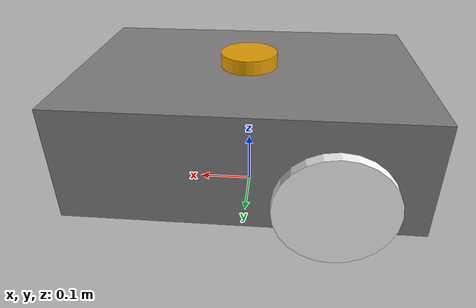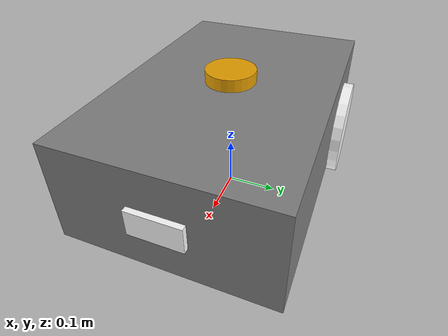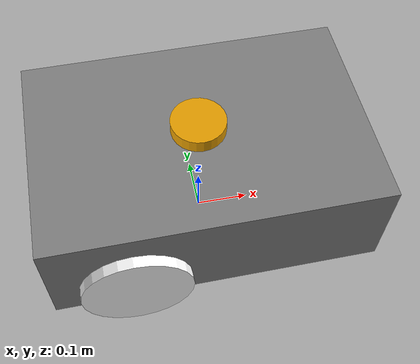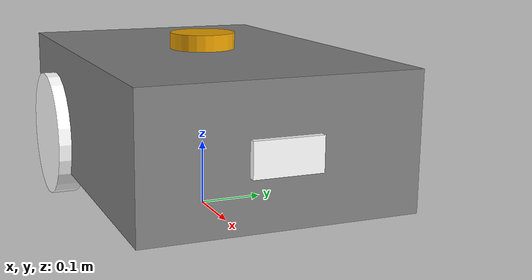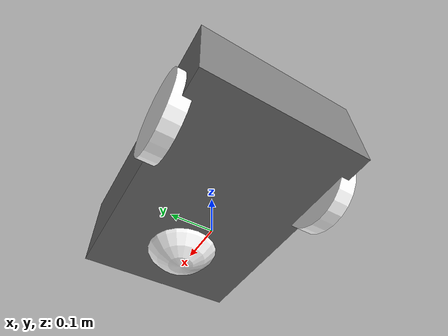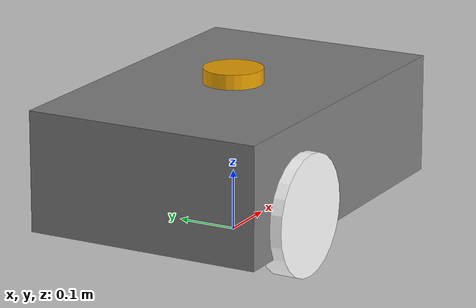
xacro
<?xml version="1.0"?>

<robot name="kordon" xmlns:xacro="http://www.ros.org/wiki/xacro">
    <!-- Args -->
    <xacro:arg name="robot_name" default="kordon001" />
    <xacro:arg name="prefix" default="001" />
    <xacro:arg name="namespace" default="" />
    <xacro:arg name="odom_topic" default="/ground_truth/odom" />
    <xacro:arg name="scan_topic" default="/scan" />
    <xacro:arg name="camera_topic" default="/camera/image_raw" />

    <!-- Includes -->
    <xacro:include filename="properties.xacro" />

    <xacro:arg name="use_gz" default="false" />
    <xacro:arg name="controllers_file" default="" />
    <xacro:include filename="ros2_control.xacro" />
    <xacro:kordon_ros2_control use_gz="$(arg use_gz)" />

    <xacro:include filename="gz.xacro" />
    <xacro:kordon_gz
        use_gz="$(arg use_gz)"
        controllers_file="$(arg controllers_file)"
        namespace="$(arg namespace)" />

    <!-- Lidar -->
    <xacro:include filename="lidar.xacro" />

    <!-- GPS -->
    <xacro:include filename="gps.xacro" />

    <!-- Camera -->
    <xacro:include filename="camera.xacro" />

    <!-- Base -->
    <link name="$(arg prefix)base_footprint" />

    <joint name="$(arg prefix)base_joint" type="fixed">
        <parent link="$(arg prefix)base_footprint" />
        <child link="$(arg prefix)base_link" />
        <origin xyz="0 0 0.15" rpy="0 0 0" />
    </joint>

    <link name="$(arg prefix)base_link">
        <xacro:inertial_box mass="${base_mass}" x="${base_length}" y="${base_width}"
            z="${base_height}">
            <origin xyz="0 0 0" rpy="0 0 0" />
        </xacro:inertial_box>
        <visual>
            <geometry>
                <box size="${base_length} ${base_width} ${base_height}" />
            </geometry>
            <origin xyz="0 0 0" rpy="0 0 0" />
            <material name="grey" />
        </visual>
        <collision>
            <geometry>
                <box size="${base_length} ${base_width} ${base_height}" />
            </geometry>
            <origin xyz="0 0 0" rpy="0 0 0" />
        </collision>
    </link>

    <!--    Left wheel -->
    <link name="$(arg prefix)left_wheel_link">
        <xacro:inertial_cylinder mass="${drive_wheel_mass}" radius="${wheel_radius}"
            length="${wheel_length}">
            <origin xyz="0 0 0" rpy="0 0 0" />
        </xacro:inertial_cylinder>
        <visual>
            <geometry>
                <cylinder radius="${wheel_radius}" length="${wheel_length}" />
            </geometry>
            <origin xyz="0 0 0" rpy="1.57 0 0" />
            <material name="black" />
        </visual>
        <collision>
            <geometry>
                <cylinder radius="${wheel_radius}" length="${wheel_length}" />
            </geometry>
            <origin xyz="0 0 0" rpy="1.57 0 0" />
        </collision>
    </link>

    <joint name="$(arg prefix)left_wheel_joint" type="continuous">
        <parent link="$(arg prefix)base_link" />
        <child link="$(arg prefix)left_wheel_link" />
        <origin xyz="-${base_length / 2 / 2} ${base_width / 2} -0.05" rpy="0 0 0" />
        <axis xyz="0 1 0" />
    </joint>

    <!--    Right wheel -->
    <link name="$(arg prefix)right_wheel_link">
        <xacro:inertial_cylinder mass="${drive_wheel_mass}" radius="${wheel_radius}"
            length="${wheel_length}">
            <origin xyz="0 0 0" rpy="0 0 0" />
        </xacro:inertial_cylinder>
        <visual>
            <geometry>
                <cylinder radius="${wheel_radius}" length="${wheel_length}" />
            </geometry>
            <origin xyz="0 0 0" rpy="-1.57 0 0" />
            <material name="black" />
        </visual>
        <collision>
            <geometry>
                <cylinder radius="${wheel_radius}" length="${wheel_length}" />
            </geometry>
            <origin xyz="0 0 0" rpy="-1.57 0 0" />
        </collision>
    </link>

    <joint name="$(arg prefix)right_wheel_joint" type="continuous">
        <parent link="$(arg prefix)base_link" />
        <child link="$(arg prefix)right_wheel_link" />
        <origin xyz="-${base_length / 2 / 2} -${base_width / 2} -0.05" rpy="0 0 0" />
        <axis xyz="0 1 0" />
    </joint>

    <!--    Caster wheel -->
    <link name="$(arg prefix)caster_wheel_link">
        <xacro:inertial_sphere mass="${caster_wheel_mass}" radius="${wheel_radius}">
            <origin xyz="0 0 0" rpy="0 0 0" />
        </xacro:inertial_sphere>
        <visual>
            <geometry>
                <sphere radius="${wheel_radius}" />
            </geometry>
            <origin xyz="0 0 0" rpy="0 0 0" />
            <material name="black" />
        </visual>
        <collision>
            <geometry>
                <sphere radius="${wheel_radius}" />
            </geometry>
            <origin xyz="0 0 0" rpy="0 0 0" />
        </collision>
    </link>

    <joint name="$(arg prefix)caster_wheel_joint" type="fixed">
        <parent link="$(arg prefix)base_link" />
        <child link="$(arg prefix)caster_wheel_link" />
        <origin xyz="${base_length / 2 / 2} 0 -0.05" rpy="0 0 0" />
    </joint>

    <gazebo reference="$(arg prefix)caster_wheel_link">
        <mu1>0.08</mu1>
        <mu2>0.08</mu2>
        <kp>100000.0</kp>
        <kd>10.0</kd>
        <minDepth>0.002</minDepth>
        <maxVel>0.5</maxVel>
        <slip1>0.4</slip1>
        <slip2>0.4</slip2>
    </gazebo>
</robot>

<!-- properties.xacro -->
<robot xmlns:xacro="http://www.ros.org/wiki/xacro">
    <!--    Materials -->
    <material name="grey">
        <color rgba="0.5 0.5 0.5 1" />
    </material>

    <material name="black">
        <color rgba="1 1 1 1" />
    </material>

    <!--   Base dimensions -->
    <xacro:property name="base_length" value="0.6" />
    <xacro:property name="base_width" value="0.4" />
    <xacro:property name="base_height" value="0.2" />

    <!--   Wheel dimensions -->
    <xacro:property name="wheel_radius" value="0.1" />
    <xacro:property name="wheel_length" value="0.04" />

    <!--   Mass properties (kg) -->
    <xacro:property name="base_mass" value="12.0" />
    <xacro:property name="drive_wheel_mass" value="1.0" />
    <xacro:property name="caster_wheel_mass" value="0.4" />

    <!-- Lidar dimensions -->
    <xacro:property name="lidar_radius" value="0.05" />
    <xacro:property name="lidar_length" value="0.05" />

    <!--   Inertia helper macros -->
    <xacro:macro name="inertial_box" params="mass x y z *origin">
        <inertial>
            <xacro:insert_block name="origin" />
            <mass value="${mass}" />
            <inertia ixx="${(mass / 12.0) * (y * y + z * z)}"
                ixy="0.0"
                ixz="0.0"
                iyy="${(mass / 12.0) * (x * x + z * z)}"
                iyz="0.0"
                izz="${(mass / 12.0) * (x * x + y * y)}" />
        </inertial>
    </xacro:macro>

    <xacro:macro name="inertial_cylinder" params="mass radius length *origin">
        <inertial>
            <xacro:insert_block name="origin" />
            <mass value="${mass}" />
            <inertia ixx="${(mass / 12.0) * (3.0 * radius * radius + length * length)}"
                ixy="0.0"
                ixz="0.0"
                iyy="${0.5 * mass * radius * radius}"
                iyz="0.0"
                izz="${(mass / 12.0) * (3.0 * radius * radius + length * length)}" />
        </inertial>
    </xacro:macro>

    <xacro:macro name="inertial_sphere" params="mass radius *origin">
        <inertial>
            <xacro:insert_block name="origin" />
            <mass value="${mass}" />
            <inertia ixx="${0.4 * mass * radius * radius}"
                ixy="0.0"
                ixz="0.0"
                iyy="${0.4 * mass * radius * radius}"
                iyz="0.0"
                izz="${0.4 * mass * radius * radius}" />
        </inertial>
    </xacro:macro>

</robot>

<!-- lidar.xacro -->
<robot xmlns:xacro="http://www.ros.org/wiki/xacro">
    <link name="$(arg prefix)lidar_link">
        <visual>
            <geometry>
                <cylinder radius="${lidar_radius}" length="${lidar_length}" />
            </geometry>
            <origin xyz="0 0 0" rpy="0 0 0" />
        </visual>
    </link>

    <joint name="$(arg prefix)lidar_joint" type="fixed">
        <parent link="$(arg prefix)base_link" />
        <child link="$(arg prefix)lidar_link" />
        <origin xyz="0 0 ${base_height / 2}" rpy="0 0 0" />
    </joint>

    <gazebo reference="$(arg prefix)lidar_link">
        <sensor name="$(arg prefix)lidar" type="gpu_lidar">
            <topic>$(arg scan_topic)</topic>
            <always_on>true</always_on>
            <update_rate>10</update_rate>
            <visualize>true</visualize>

            <lidar>
                <scan>
                    <horizontal>
                        <samples>360</samples>
                        <resolution>1</resolution>
                        <min_angle>-3.14159</min_angle>
                        <max_angle>3.14159</max_angle>
                    </horizontal>
                </scan>
                <range>
                    <min>0.12</min>
                    <max>10.0</max>
                    <resolution>0.01</resolution>
                </range>
            </lidar>
        </sensor>
    </gazebo>
</robot>

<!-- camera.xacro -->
<robot xmlns:xacro="http://www.ros.org/wiki/xacro">
    <link name="$(arg prefix)camera_link">
        <xacro:inertial_box mass="0.15" x="0.02" y="0.1" z="0.08">
            <origin xyz="0 0 0" rpy="0 0 0" />
        </xacro:inertial_box>
        <visual>
            <geometry>
                <box size="0.02 0.1 0.05" />
            </geometry>
            <origin xyz="0 0 0" rpy="0 0 0" />
            <material name="black" />
        </visual>
        <collision>
            <geometry>
                <box size="0.02 0.1 0.05" />
            </geometry>
            <origin xyz="0 0 0" rpy="0 0 0" />
        </collision>
    </link>

    <gazebo reference="$(arg prefix)camera_link">
        <sensor name="$(arg prefix)camera_sensor" type="camera">
            <topic>$(arg camera_topic)</topic>
            <always_on>true</always_on>
            <update_rate>30</update_rate>
            <visualize>true</visualize>
            <camera>
                <horizontal_fov>1.3962634</horizontal_fov>
                <image>
                    <width>1280</width>
                    <height>720</height>
                    <format>R8G8B8</format>
                </image>
                <clip>
                    <near>0.05</near>
                    <far>50.0</far>
                </clip>
            </camera>
        </sensor>
    </gazebo>

    <joint name="$(arg prefix)camera_joint" type="fixed">
        <parent link="$(arg prefix)base_link" />
        <child link="$(arg prefix)camera_link" />
        <origin xyz="${base_length / 2} 0 0" rpy="0 0 0" />
    </joint>
</robot>
